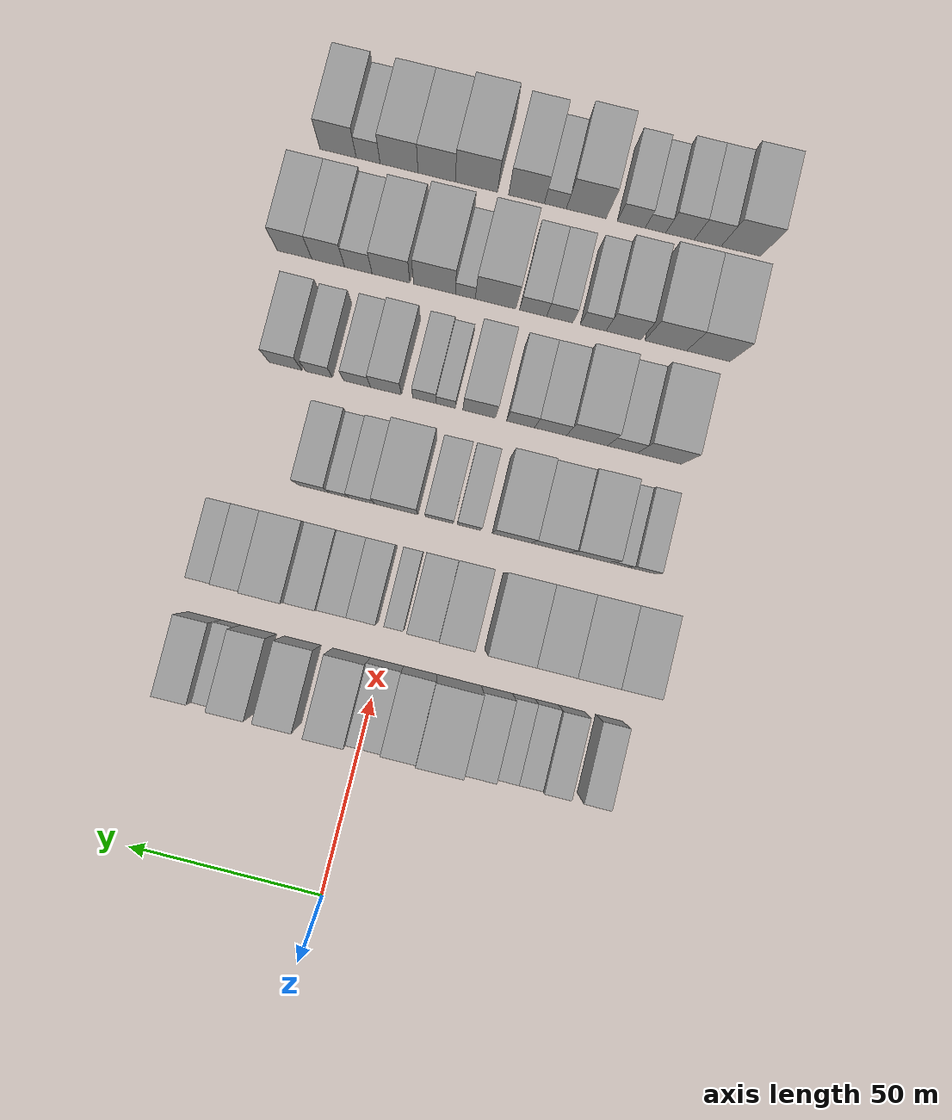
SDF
<sdf version="1.6">
 <world name="default">
  <model name="building_51">
   <static>1</static>
   <pose>50.0000 -59.1784 0 0.000000 0.000000 0.000000</pose>
   <link name="link">
    <pose>0 0 7.50 0 0 0</pose>
    <collision name="collision"><geometry><box><size>20.0000 6.8849 15.0000</size></box></geometry></collision>
    <visual name="visual">
     <cast_shadows>0</cast_shadows>
     <geometry><box><size>20.0000 6.8849 15.0000</size></box></geometry>
     <material>
      <script>
       <uri>model://grey_wall/materials/scripts</uri>
       <uri>model://grey_wall/materials/textures</uri>
       <name>vrc/grey_wall</name>
      </script>
     </material>
    </visual>
   </link>
  </model>
  <model name="building_52">
   <static>1</static>
   <pose>50.0000 -49.3642 0 0.000000 0.000000 0.000000</pose>
   <link name="link">
    <pose>0 0 7.50 0 0 0</pose>
    <collision name="collision"><geometry><box><size>20.0000 6.7436 15.0000</size></box></geometry></collision>
    <visual name="visual">
     <cast_shadows>0</cast_shadows>
     <geometry><box><size>20.0000 6.7436 15.0000</size></box></geometry>
     <material>
      <script>
       <uri>model://grey_wall/materials/scripts</uri>
       <uri>model://grey_wall/materials/textures</uri>
       <name>vrc/grey_wall</name>
      </script>
     </material>
    </visual>
   </link>
  </model>
  <model name="building_53">
   <static>1</static>
   <pose>50.0000 -43.0074 0 0.000000 0.000000 0.000000</pose>
   <link name="link">
    <pose>0 0 6.00 0 0 0</pose>
    <collision name="collision"><geometry><box><size>20.0000 5.9699 12.0000</size></box></geometry></collision>
    <visual name="visual">
     <cast_shadows>0</cast_shadows>
     <geometry><box><size>20.0000 5.9699 12.0000</size></box></geometry>
     <material>
      <script>
       <uri>model://grey_wall/materials/scripts</uri>
       <uri>model://grey_wall/materials/textures</uri>
       <name>vrc/grey_wall</name>
      </script>
     </material>
    </visual>
   </link>
  </model>
  <model name="building_54">
   <static>1</static>
   <pose>50.0000 -37.0977 0 0.000000 0.000000 0.000000</pose>
   <link name="link">
    <pose>0 0 6.00 0 0 0</pose>
    <collision name="collision"><geometry><box><size>20.0000 5.8495 12.0000</size></box></geometry></collision>
    <visual name="visual">
     <cast_shadows>0</cast_shadows>
     <geometry><box><size>20.0000 5.8495 12.0000</size></box></geometry>
     <material>
      <script>
       <uri>model://grey_wall/materials/scripts</uri>
       <uri>model://grey_wall/materials/textures</uri>
       <name>vrc/grey_wall</name>
      </script>
     </material>
    </visual>
   </link>
  </model>
  <model name="building_55">
   <static>1</static>
   <pose>50.0000 -30.1137 0 0.000000 0.000000 0.000000</pose>
   <link name="link">
    <pose>0 0 9.00 0 0 0</pose>
    <collision name="collision"><geometry><box><size>20.0000 8.1184 18.0000</size></box></geometry></collision>
    <visual name="visual">
     <cast_shadows>0</cast_shadows>
     <geometry><box><size>20.0000 8.1184 18.0000</size></box></geometry>
     <material>
      <script>
       <uri>model://grey_wall/materials/scripts</uri>
       <uri>model://grey_wall/materials/textures</uri>
       <name>vrc/grey_wall</name>
      </script>
     </material>
    </visual>
   </link>
  </model>
  <model name="building_56">
   <static>1</static>
   <pose>50.0000 -20.2414 0 0.000000 0.000000 0.000000</pose>
   <link name="link">
    <pose>0 0 12.00 0 0 0</pose>
    <collision name="collision"><geometry><box><size>20.0000 11.6262 24.0000</size></box></geometry></collision>
    <visual name="visual">
     <cast_shadows>0</cast_shadows>
     <geometry><box><size>20.0000 11.6262 24.0000</size></box></geometry>
     <material>
      <script>
       <uri>model://grey_wall/materials/scripts</uri>
       <uri>model://grey_wall/materials/textures</uri>
       <name>vrc/grey_wall</name>
      </script>
     </material>
    </visual>
   </link>
  </model>
  <model name="building_57">
   <static>1</static>
   <pose>50.0000 -10.1097 0 0.000000 0.000000 0.000000</pose>
   <link name="link">
    <pose>0 0 10.50 0 0 0</pose>
    <collision name="collision"><geometry><box><size>20.0000 8.6371 21.0000</size></box></geometry></collision>
    <visual name="visual">
     <cast_shadows>0</cast_shadows>
     <geometry><box><size>20.0000 8.6371 21.0000</size></box></geometry>
     <material>
      <script>
       <uri>model://grey_wall/materials/scripts</uri>
       <uri>model://grey_wall/materials/textures</uri>
       <name>vrc/grey_wall</name>
      </script>
     </material>
    </visual>
   </link>
  </model>
  <model name="building_58">
   <static>1</static>
   <pose>50.0000 -1.4658 0 0.000000 0.000000 0.000000</pose>
   <link name="link">
    <pose>0 0 9.00 0 0 0</pose>
    <collision name="collision"><geometry><box><size>20.0000 8.6507 18.0000</size></box></geometry></collision>
    <visual name="visual">
     <cast_shadows>0</cast_shadows>
     <geometry><box><size>20.0000 8.6507 18.0000</size></box></geometry>
     <material>
      <script>
       <uri>model://grey_wall/materials/scripts</uri>
       <uri>model://grey_wall/materials/textures</uri>
       <name>vrc/grey_wall</name>
      </script>
     </material>
    </visual>
   </link>
  </model>
  <model name="building_59">
   <static>1</static>
   <pose>50.0000 7.7913 0 0.000000 0.000000 0.000000</pose>
   <link name="link">
    <pose>0 0 12.00 0 0 0</pose>
    <collision name="collision"><geometry><box><size>20.0000 9.8635 24.0000</size></box></geometry></collision>
    <visual name="visual">
     <cast_shadows>0</cast_shadows>
     <geometry><box><size>20.0000 9.8635 24.0000</size></box></geometry>
     <material>
      <script>
       <uri>model://grey_wall/materials/scripts</uri>
       <uri>model://grey_wall/materials/textures</uri>
       <name>vrc/grey_wall</name>
      </script>
     </material>
    </visual>
   </link>
  </model>
  <model name="building_60">
   <static>1</static>
   <pose>50.0000 20.5481 0 0.000000 0.000000 0.000000</pose>
   <link name="link">
    <pose>0 0 10.50 0 0 0</pose>
    <collision name="collision"><geometry><box><size>20.0000 9.6502 21.0000</size></box></geometry></collision>
    <visual name="visual">
     <cast_shadows>0</cast_shadows>
     <geometry><box><size>20.0000 9.6502 21.0000</size></box></geometry>
     <material>
      <script>
       <uri>model://grey_wall/materials/scripts</uri>
       <uri>model://grey_wall/materials/textures</uri>
       <name>vrc/grey_wall</name>
      </script>
     </material>
    </visual>
   </link>
  </model>
  <model name="building_61">
   <static>1</static>
   <pose>50.0000 32.0184 0 0.000000 0.000000 0.000000</pose>
   <link name="link">
    <pose>0 0 10.50 0 0 0</pose>
    <collision name="collision"><geometry><box><size>20.0000 9.2904 21.0000</size></box></geometry></collision>
    <visual name="visual">
     <cast_shadows>0</cast_shadows>
     <geometry><box><size>20.0000 9.2904 21.0000</size></box></geometry>
     <material>
      <script>
       <uri>model://grey_wall/materials/scripts</uri>
       <uri>model://grey_wall/materials/textures</uri>
       <name>vrc/grey_wall</name>
      </script>
     </material>
    </visual>
   </link>
  </model>
  <model name="building_62">
   <static>1</static>
   <pose>50.0000 39.3033 0 0.000000 0.000000 0.000000</pose>
   <link name="link">
    <pose>0 0 6.00 0 0 0</pose>
    <collision name="collision"><geometry><box><size>20.0000 5.2794 12.0000</size></box></geometry></collision>
    <visual name="visual">
     <cast_shadows>0</cast_shadows>
     <geometry><box><size>20.0000 5.2794 12.0000</size></box></geometry>
     <material>
      <script>
       <uri>model://grey_wall/materials/scripts</uri>
       <uri>model://grey_wall/materials/textures</uri>
       <name>vrc/grey_wall</name>
      </script>
     </material>
    </visual>
   </link>
  </model>
  <model name="building_63">
   <static>1</static>
   <pose>50.0000 46.2925 0 0.000000 0.000000 0.000000</pose>
   <link name="link">
    <pose>0 0 9.00 0 0 0</pose>
    <collision name="collision"><geometry><box><size>20.0000 8.6988 18.0000</size></box></geometry></collision>
    <visual name="visual">
     <cast_shadows>0</cast_shadows>
     <geometry><box><size>20.0000 8.6988 18.0000</size></box></geometry>
     <material>
      <script>
       <uri>model://grey_wall/materials/scripts</uri>
       <uri>model://grey_wall/materials/textures</uri>
       <name>vrc/grey_wall</name>
      </script>
     </material>
    </visual>
   </link>
  </model>
  <model name="building_168">
   <static>1</static>
   <pose>79.0000 -61.6545 0 0.000000 0.000000 0.000000</pose>
   <link name="link">
    <pose>0 0 12.00 0 0 0</pose>
    <collision name="collision"><geometry><box><size>20.0000 9.9933 24.0000</size></box></geometry></collision>
    <visual name="visual">
     <cast_shadows>0</cast_shadows>
     <geometry><box><size>20.0000 9.9933 24.0000</size></box></geometry>
     <material>
      <script>
       <uri>model://grey_wall/materials/scripts</uri>
       <uri>model://grey_wall/materials/textures</uri>
       <name>vrc/grey_wall</name>
      </script>
     </material>
    </visual>
   </link>
  </model>
  <model name="building_169">
   <static>1</static>
   <pose>79.0000 -51.4443 0 0.000000 0.000000 0.000000</pose>
   <link name="link">
    <pose>0 0 12.00 0 0 0</pose>
    <collision name="collision"><geometry><box><size>20.0000 10.4271 24.0000</size></box></geometry></collision>
    <visual name="visual">
     <cast_shadows>0</cast_shadows>
     <geometry><box><size>20.0000 10.4271 24.0000</size></box></geometry>
     <material>
      <script>
       <uri>model://grey_wall/materials/scripts</uri>
       <uri>model://grey_wall/materials/textures</uri>
       <name>vrc/grey_wall</name>
      </script>
     </material>
    </visual>
   </link>
  </model>
  <model name="building_170">
   <static>1</static>
   <pose>79.0000 -41.3080 0 0.000000 0.000000 0.000000</pose>
   <link name="link">
    <pose>0 0 12.00 0 0 0</pose>
    <collision name="collision"><geometry><box><size>20.0000 9.8457 24.0000</size></box></geometry></collision>
    <visual name="visual">
     <cast_shadows>0</cast_shadows>
     <geometry><box><size>20.0000 9.8457 24.0000</size></box></geometry>
     <material>
      <script>
       <uri>model://grey_wall/materials/scripts</uri>
       <uri>model://grey_wall/materials/textures</uri>
       <name>vrc/grey_wall</name>
      </script>
     </material>
    </visual>
   </link>
  </model>
  <model name="building_171">
   <static>1</static>
   <pose>79.0000 -30.5276 0 0.000000 0.000000 0.000000</pose>
   <link name="link">
    <pose>0 0 12.00 0 0 0</pose>
    <collision name="collision"><geometry><box><size>20.0000 11.7151 24.0000</size></box></geometry></collision>
    <visual name="visual">
     <cast_shadows>0</cast_shadows>
     <geometry><box><size>20.0000 11.7151 24.0000</size></box></geometry>
     <material>
      <script>
       <uri>model://grey_wall/materials/scripts</uri>
       <uri>model://grey_wall/materials/textures</uri>
       <name>vrc/grey_wall</name>
      </script>
     </material>
    </visual>
   </link>
  </model>
  <model name="building_172">
   <static>1</static>
   <pose>79.0000 -17.2524 0 0.000000 0.000000 0.000000</pose>
   <link name="link">
    <pose>0 0 10.50 0 0 0</pose>
    <collision name="collision"><geometry><box><size>20.0000 8.8352 21.0000</size></box></geometry></collision>
    <visual name="visual">
     <cast_shadows>0</cast_shadows>
     <geometry><box><size>20.0000 8.8352 21.0000</size></box></geometry>
     <material>
      <script>
       <uri>model://grey_wall/materials/scripts</uri>
       <uri>model://grey_wall/materials/textures</uri>
       <name>vrc/grey_wall</name>
      </script>
     </material>
    </visual>
   </link>
  </model>
  <model name="building_173">
   <static>1</static>
   <pose>79.0000 -8.8095 0 0.000000 0.000000 0.000000</pose>
   <link name="link">
    <pose>0 0 9.00 0 0 0</pose>
    <collision name="collision"><geometry><box><size>20.0000 8.0505 18.0000</size></box></geometry></collision>
    <visual name="visual">
     <cast_shadows>0</cast_shadows>
     <geometry><box><size>20.0000 8.0505 18.0000</size></box></geometry>
     <material>
      <script>
       <uri>model://grey_wall/materials/scripts</uri>
       <uri>model://grey_wall/materials/textures</uri>
       <name>vrc/grey_wall</name>
      </script>
     </material>
    </visual>
   </link>
  </model>
  <model name="building_174">
   <static>1</static>
   <pose>79.0000 -1.3355 0 0.000000 0.000000 0.000000</pose>
   <link name="link">
    <pose>0 0 6.00 0 0 0</pose>
    <collision name="collision"><geometry><box><size>20.0000 4.8977 12.0000</size></box></geometry></collision>
    <visual name="visual">
     <cast_shadows>0</cast_shadows>
     <geometry><box><size>20.0000 4.8977 12.0000</size></box></geometry>
     <material>
      <script>
       <uri>model://grey_wall/materials/scripts</uri>
       <uri>model://grey_wall/materials/textures</uri>
       <name>vrc/grey_wall</name>
      </script>
     </material>
    </visual>
   </link>
  </model>
  <model name="building_175">
   <static>1</static>
   <pose>79.0000 6.7716 0 0.000000 0.000000 0.000000</pose>
   <link name="link">
    <pose>0 0 7.50 0 0 0</pose>
    <collision name="collision"><geometry><box><size>20.0000 7.3166 15.0000</size></box></geometry></collision>
    <visual name="visual">
     <cast_shadows>0</cast_shadows>
     <geometry><box><size>20.0000 7.3166 15.0000</size></box></geometry>
     <material>
      <script>
       <uri>model://grey_wall/materials/scripts</uri>
       <uri>model://grey_wall/materials/textures</uri>
       <name>vrc/grey_wall</name>
      </script>
     </material>
    </visual>
   </link>
  </model>
  <model name="building_176">
   <static>1</static>
   <pose>79.0000 14.1439 0 0.000000 0.000000 0.000000</pose>
   <link name="link">
    <pose>0 0 7.50 0 0 0</pose>
    <collision name="collision"><geometry><box><size>20.0000 7.4280 15.0000</size></box></geometry></collision>
    <visual name="visual">
     <cast_shadows>0</cast_shadows>
     <geometry><box><size>20.0000 7.4280 15.0000</size></box></geometry>
     <material>
      <script>
       <uri>model://grey_wall/materials/scripts</uri>
       <uri>model://grey_wall/materials/textures</uri>
       <name>vrc/grey_wall</name>
      </script>
     </material>
    </visual>
   </link>
  </model>
  <model name="building_177">
   <static>1</static>
   <pose>79.0000 21.7420 0 0.000000 0.000000 0.000000</pose>
   <link name="link">
    <pose>0 0 9.00 0 0 0</pose>
    <collision name="collision"><geometry><box><size>20.0000 7.7682 18.0000</size></box></geometry></collision>
    <visual name="visual">
     <cast_shadows>0</cast_shadows>
     <geometry><box><size>20.0000 7.7682 18.0000</size></box></geometry>
     <material>
      <script>
       <uri>model://grey_wall/materials/scripts</uri>
       <uri>model://grey_wall/materials/textures</uri>
       <name>vrc/grey_wall</name>
      </script>
     </material>
    </visual>
   </link>
  </model>
  <model name="building_178">
   <static>1</static>
   <pose>79.0000 30.7493 0 0.000000 0.000000 0.000000</pose>
   <link name="link">
    <pose>0 0 12.00 0 0 0</pose>
    <collision name="collision"><geometry><box><size>20.0000 10.2464 24.0000</size></box></geometry></collision>
    <visual name="visual">
     <cast_shadows>0</cast_shadows>
     <geometry><box><size>20.0000 10.2464 24.0000</size></box></geometry>
     <material>
      <script>
       <uri>model://grey_wall/materials/scripts</uri>
       <uri>model://grey_wall/materials/textures</uri>
       <name>vrc/grey_wall</name>
      </script>
     </material>
    </visual>
   </link>
  </model>
  <model name="building_179">
   <static>1</static>
   <pose>79.0000 39.9305 0 0.000000 0.000000 0.000000</pose>
   <link name="link">
    <pose>0 0 9.00 0 0 0</pose>
    <collision name="collision"><geometry><box><size>20.0000 8.1161 18.0000</size></box></geometry></collision>
    <visual name="visual">
     <cast_shadows>0</cast_shadows>
     <geometry><box><size>20.0000 8.1161 18.0000</size></box></geometry>
     <material>
      <script>
       <uri>model://grey_wall/materials/scripts</uri>
       <uri>model://grey_wall/materials/textures</uri>
       <name>vrc/grey_wall</name>
      </script>
     </material>
    </visual>
   </link>
  </model>
  <model name="building_180">
   <static>1</static>
   <pose>79.0000 47.3408 0 0.000000 0.000000 0.000000</pose>
   <link name="link">
    <pose>0 0 7.50 0 0 0</pose>
    <collision name="collision"><geometry><box><size>20.0000 6.7044 15.0000</size></box></geometry></collision>
    <visual name="visual">
     <cast_shadows>0</cast_shadows>
     <geometry><box><size>20.0000 6.7044 15.0000</size></box></geometry>
     <material>
      <script>
       <uri>model://grey_wall/materials/scripts</uri>
       <uri>model://grey_wall/materials/textures</uri>
       <name>vrc/grey_wall</name>
      </script>
     </material>
    </visual>
   </link>
  </model>
  <model name="building_282">
   <static>1</static>
   <pose>108.0000 -58.4240 0 0.000000 0.000000 0.000000</pose>
   <link name="link">
    <pose>0 0 7.50 0 0 0</pose>
    <collision name="collision"><geometry><box><size>20.0000 6.3321 15.0000</size></box></geometry></collision>
    <visual name="visual">
     <cast_shadows>0</cast_shadows>
     <geometry><box><size>20.0000 6.3321 15.0000</size></box></geometry>
     <material>
      <script>
       <uri>model://grey_wall/materials/scripts</uri>
       <uri>model://grey_wall/materials/textures</uri>
       <name>vrc/grey_wall</name>
      </script>
     </material>
    </visual>
   </link>
  </model>
  <model name="building_283">
   <static>1</static>
   <pose>108.0000 -52.6528 0 0.000000 0.000000 0.000000</pose>
   <link name="link">
    <pose>0 0 6.00 0 0 0</pose>
    <collision name="collision"><geometry><box><size>20.0000 5.2102 12.0000</size></box></geometry></collision>
    <visual name="visual">
     <cast_shadows>0</cast_shadows>
     <geometry><box><size>20.0000 5.2102 12.0000</size></box></geometry>
     <material>
      <script>
       <uri>model://grey_wall/materials/scripts</uri>
       <uri>model://grey_wall/materials/textures</uri>
       <name>vrc/grey_wall</name>
      </script>
     </material>
    </visual>
   </link>
  </model>
  <model name="building_284">
   <static>1</static>
   <pose>108.0000 -44.8883 0 0.000000 0.000000 0.000000</pose>
   <link name="link">
    <pose>0 0 12.00 0 0 0</pose>
    <collision name="collision"><geometry><box><size>20.0000 10.3189 24.0000</size></box></geometry></collision>
    <visual name="visual">
     <cast_shadows>0</cast_shadows>
     <geometry><box><size>20.0000 10.3189 24.0000</size></box></geometry>
     <material>
      <script>
       <uri>model://grey_wall/materials/scripts</uri>
       <uri>model://grey_wall/materials/textures</uri>
       <name>vrc/grey_wall</name>
      </script>
     </material>
    </visual>
   </link>
  </model>
  <model name="building_285">
   <static>1</static>
   <pose>108.0000 -34.7477 0 0.000000 0.000000 0.000000</pose>
   <link name="link">
    <pose>0 0 10.50 0 0 0</pose>
    <collision name="collision"><geometry><box><size>20.0000 9.9623 21.0000</size></box></geometry></collision>
    <visual name="visual">
     <cast_shadows>0</cast_shadows>
     <geometry><box><size>20.0000 9.9623 21.0000</size></box></geometry>
     <material>
      <script>
       <uri>model://grey_wall/materials/scripts</uri>
       <uri>model://grey_wall/materials/textures</uri>
       <name>vrc/grey_wall</name>
      </script>
     </material>
    </visual>
   </link>
  </model>
  <model name="building_286">
   <static>1</static>
   <pose>108.0000 -24.6324 0 0.000000 0.000000 0.000000</pose>
   <link name="link">
    <pose>0 0 12.00 0 0 0</pose>
    <collision name="collision"><geometry><box><size>20.0000 10.2683 24.0000</size></box></geometry></collision>
    <visual name="visual">
     <cast_shadows>0</cast_shadows>
     <geometry><box><size>20.0000 10.2683 24.0000</size></box></geometry>
     <material>
      <script>
       <uri>model://grey_wall/materials/scripts</uri>
       <uri>model://grey_wall/materials/textures</uri>
       <name>vrc/grey_wall</name>
      </script>
     </material>
    </visual>
   </link>
  </model>
  <model name="building_287">
   <static>1</static>
   <pose>108.0000 -13.4036 0 0.000000 0.000000 0.000000</pose>
   <link name="link">
    <pose>0 0 7.50 0 0 0</pose>
    <collision name="collision"><geometry><box><size>20.0000 6.1892 15.0000</size></box></geometry></collision>
    <visual name="visual">
     <cast_shadows>0</cast_shadows>
     <geometry><box><size>20.0000 6.1892 15.0000</size></box></geometry>
     <material>
      <script>
       <uri>model://grey_wall/materials/scripts</uri>
       <uri>model://grey_wall/materials/textures</uri>
       <name>vrc/grey_wall</name>
      </script>
     </material>
    </visual>
   </link>
  </model>
  <model name="building_288">
   <static>1</static>
   <pose>108.0000 -5.6648 0 0.000000 0.000000 0.000000</pose>
   <link name="link">
    <pose>0 0 7.50 0 0 0</pose>
    <collision name="collision"><geometry><box><size>20.0000 7.2884 15.0000</size></box></geometry></collision>
    <visual name="visual">
     <cast_shadows>0</cast_shadows>
     <geometry><box><size>20.0000 7.2884 15.0000</size></box></geometry>
     <material>
      <script>
       <uri>model://grey_wall/materials/scripts</uri>
       <uri>model://grey_wall/materials/textures</uri>
       <name>vrc/grey_wall</name>
      </script>
     </material>
    </visual>
   </link>
  </model>
  <model name="building_289">
   <static>1</static>
   <pose>108.0000 5.5718 0 0.000000 0.000000 0.000000</pose>
   <link name="link">
    <pose>0 0 12.00 0 0 0</pose>
    <collision name="collision"><geometry><box><size>20.0000 11.1848 24.0000</size></box></geometry></collision>
    <visual name="visual">
     <cast_shadows>0</cast_shadows>
     <geometry><box><size>20.0000 11.1848 24.0000</size></box></geometry>
     <material>
      <script>
       <uri>model://grey_wall/materials/scripts</uri>
       <uri>model://grey_wall/materials/textures</uri>
       <name>vrc/grey_wall</name>
      </script>
     </material>
    </visual>
   </link>
  </model>
  <model name="building_290">
   <static>1</static>
   <pose>108.0000 14.6629 0 0.000000 0.000000 0.000000</pose>
   <link name="link">
    <pose>0 0 7.50 0 0 0</pose>
    <collision name="collision"><geometry><box><size>20.0000 6.9974 15.0000</size></box></geometry></collision>
    <visual name="visual">
     <cast_shadows>0</cast_shadows>
     <geometry><box><size>20.0000 6.9974 15.0000</size></box></geometry>
     <material>
      <script>
       <uri>model://grey_wall/materials/scripts</uri>
       <uri>model://grey_wall/materials/textures</uri>
       <name>vrc/grey_wall</name>
      </script>
     </material>
    </visual>
   </link>
  </model>
  <model name="building_291">
   <static>1</static>
   <pose>108.0000 20.7461 0 0.000000 0.000000 0.000000</pose>
   <link name="link">
    <pose>0 0 6.00 0 0 0</pose>
    <collision name="collision"><geometry><box><size>20.0000 5.1690 12.0000</size></box></geometry></collision>
    <visual name="visual">
     <cast_shadows>0</cast_shadows>
     <geometry><box><size>20.0000 5.1690 12.0000</size></box></geometry>
     <material>
      <script>
       <uri>model://grey_wall/materials/scripts</uri>
       <uri>model://grey_wall/materials/textures</uri>
       <name>vrc/grey_wall</name>
      </script>
     </material>
    </visual>
   </link>
  </model>
  <model name="building_292">
   <static>1</static>
   <pose>108.0000 27.3857 0 0.000000 0.000000 0.000000</pose>
   <link name="link">
    <pose>0 0 9.00 0 0 0</pose>
    <collision name="collision"><geometry><box><size>20.0000 8.1102 18.0000</size></box></geometry></collision>
    <visual name="visual">
     <cast_shadows>0</cast_shadows>
     <geometry><box><size>20.0000 8.1102 18.0000</size></box></geometry>
     <material>
      <script>
       <uri>model://grey_wall/materials/scripts</uri>
       <uri>model://grey_wall/materials/textures</uri>
       <name>vrc/grey_wall</name>
      </script>
     </material>
    </visual>
   </link>
  </model>
  <model name="building_390">
   <static>1</static>
   <pose>137.0000 -56.6319 0 0.000000 0.000000 0.000000</pose>
   <link name="link">
    <pose>0 0 12.00 0 0 0</pose>
    <collision name="collision"><geometry><box><size>20.0000 11.6545 24.0000</size></box></geometry></collision>
    <visual name="visual">
     <cast_shadows>0</cast_shadows>
     <geometry><box><size>20.0000 11.6545 24.0000</size></box></geometry>
     <material>
      <script>
       <uri>model://grey_wall/materials/scripts</uri>
       <uri>model://grey_wall/materials/textures</uri>
       <name>vrc/grey_wall</name>
      </script>
     </material>
    </visual>
   </link>
  </model>
  <model name="building_391">
   <static>1</static>
   <pose>137.0000 -46.8987 0 0.000000 0.000000 0.000000</pose>
   <link name="link">
    <pose>0 0 9.00 0 0 0</pose>
    <collision name="collision"><geometry><box><size>20.0000 7.8121 18.0000</size></box></geometry></collision>
    <visual name="visual">
     <cast_shadows>0</cast_shadows>
     <geometry><box><size>20.0000 7.8121 18.0000</size></box></geometry>
     <material>
      <script>
       <uri>model://grey_wall/materials/scripts</uri>
       <uri>model://grey_wall/materials/textures</uri>
       <name>vrc/grey_wall</name>
      </script>
     </material>
    </visual>
   </link>
  </model>
  <model name="building_392">
   <static>1</static>
   <pose>137.0000 -37.5493 0 0.000000 0.000000 0.000000</pose>
   <link name="link">
    <pose>0 0 12.00 0 0 0</pose>
    <collision name="collision"><geometry><box><size>20.0000 10.8866 24.0000</size></box></geometry></collision>
    <visual name="visual">
     <cast_shadows>0</cast_shadows>
     <geometry><box><size>20.0000 10.8866 24.0000</size></box></geometry>
     <material>
      <script>
       <uri>model://grey_wall/materials/scripts</uri>
       <uri>model://grey_wall/materials/textures</uri>
       <name>vrc/grey_wall</name>
      </script>
     </material>
    </visual>
   </link>
  </model>
  <model name="building_393">
   <static>1</static>
   <pose>137.0000 -27.8930 0 0.000000 0.000000 0.000000</pose>
   <link name="link">
    <pose>0 0 9.00 0 0 0</pose>
    <collision name="collision"><geometry><box><size>20.0000 8.4260 18.0000</size></box></geometry></collision>
    <visual name="visual">
     <cast_shadows>0</cast_shadows>
     <geometry><box><size>20.0000 8.4260 18.0000</size></box></geometry>
     <material>
      <script>
       <uri>model://grey_wall/materials/scripts</uri>
       <uri>model://grey_wall/materials/textures</uri>
       <name>vrc/grey_wall</name>
      </script>
     </material>
    </visual>
   </link>
  </model>
  <model name="building_394">
   <static>1</static>
   <pose>137.0000 -19.9711 0 0.000000 0.000000 0.000000</pose>
   <link name="link">
    <pose>0 0 9.00 0 0 0</pose>
    <collision name="collision"><geometry><box><size>20.0000 7.4180 18.0000</size></box></geometry></collision>
    <visual name="visual">
     <cast_shadows>0</cast_shadows>
     <geometry><box><size>20.0000 7.4180 18.0000</size></box></geometry>
     <material>
      <script>
       <uri>model://grey_wall/materials/scripts</uri>
       <uri>model://grey_wall/materials/textures</uri>
       <name>vrc/grey_wall</name>
      </script>
     </material>
    </visual>
   </link>
  </model>
  <model name="building_395">
   <static>1</static>
   <pose>137.0000 -8.9519 0 0.000000 0.000000 0.000000</pose>
   <link name="link">
    <pose>0 0 10.50 0 0 0</pose>
    <collision name="collision"><geometry><box><size>20.0000 8.6204 21.0000</size></box></geometry></collision>
    <visual name="visual">
     <cast_shadows>0</cast_shadows>
     <geometry><box><size>20.0000 8.6204 21.0000</size></box></geometry>
     <material>
      <script>
       <uri>model://grey_wall/materials/scripts</uri>
       <uri>model://grey_wall/materials/textures</uri>
       <name>vrc/grey_wall</name>
      </script>
     </material>
    </visual>
   </link>
  </model>
  <model name="building_396">
   <static>1</static>
   <pose>137.0000 -0.0983 0 0.000000 0.000000 0.000000</pose>
   <link name="link">
    <pose>0 0 6.00 0 0 0</pose>
    <collision name="collision"><geometry><box><size>20.0000 5.0868 12.0000</size></box></geometry></collision>
    <visual name="visual">
     <cast_shadows>0</cast_shadows>
     <geometry><box><size>20.0000 5.0868 12.0000</size></box></geometry>
     <material>
      <script>
       <uri>model://grey_wall/materials/scripts</uri>
       <uri>model://grey_wall/materials/textures</uri>
       <name>vrc/grey_wall</name>
      </script>
     </material>
    </visual>
   </link>
  </model>
  <model name="building_397">
   <static>1</static>
   <pose>137.0000 5.5508 0 0.000000 0.000000 0.000000</pose>
   <link name="link">
    <pose>0 0 7.50 0 0 0</pose>
    <collision name="collision"><geometry><box><size>20.0000 6.2115 15.0000</size></box></geometry></collision>
    <visual name="visual">
     <cast_shadows>0</cast_shadows>
     <geometry><box><size>20.0000 6.2115 15.0000</size></box></geometry>
     <material>
      <script>
       <uri>model://grey_wall/materials/scripts</uri>
       <uri>model://grey_wall/materials/textures</uri>
       <name>vrc/grey_wall</name>
      </script>
     </material>
    </visual>
   </link>
  </model>
  <model name="building_398">
   <static>1</static>
   <pose>137.0000 15.7841 0 0.000000 0.000000 0.000000</pose>
   <link name="link">
    <pose>0 0 9.00 0 0 0</pose>
    <collision name="collision"><geometry><box><size>20.0000 8.2549 18.0000</size></box></geometry></collision>
    <visual name="visual">
     <cast_shadows>0</cast_shadows>
     <geometry><box><size>20.0000 8.2549 18.0000</size></box></geometry>
     <material>
      <script>
       <uri>model://grey_wall/materials/scripts</uri>
       <uri>model://grey_wall/materials/textures</uri>
       <name>vrc/grey_wall</name>
      </script>
     </material>
    </visual>
   </link>
  </model>
  <model name="building_399">
   <static>1</static>
   <pose>137.0000 23.4554 0 0.000000 0.000000 0.000000</pose>
   <link name="link">
    <pose>0 0 7.50 0 0 0</pose>
    <collision name="collision"><geometry><box><size>20.0000 7.0878 15.0000</size></box></geometry></collision>
    <visual name="visual">
     <cast_shadows>0</cast_shadows>
     <geometry><box><size>20.0000 7.0878 15.0000</size></box></geometry>
     <material>
      <script>
       <uri>model://grey_wall/materials/scripts</uri>
       <uri>model://grey_wall/materials/textures</uri>
       <name>vrc/grey_wall</name>
      </script>
     </material>
    </visual>
   </link>
  </model>
  <model name="building_400">
   <static>1</static>
   <pose>137.0000 33.5954 0 0.000000 0.000000 0.000000</pose>
   <link name="link">
    <pose>0 0 7.50 0 0 0</pose>
    <collision name="collision"><geometry><box><size>20.0000 7.1922 15.0000</size></box></geometry></collision>
    <visual name="visual">
     <cast_shadows>0</cast_shadows>
     <geometry><box><size>20.0000 7.1922 15.0000</size></box></geometry>
     <material>
      <script>
       <uri>model://grey_wall/materials/scripts</uri>
       <uri>model://grey_wall/materials/textures</uri>
       <name>vrc/grey_wall</name>
      </script>
     </material>
    </visual>
   </link>
  </model>
  <model name="building_401">
   <static>1</static>
   <pose>137.0000 42.5350 0 0.000000 0.000000 0.000000</pose>
   <link name="link">
    <pose>0 0 9.00 0 0 0</pose>
    <collision name="collision"><geometry><box><size>20.0000 8.6869 18.0000</size></box></geometry></collision>
    <visual name="visual">
     <cast_shadows>0</cast_shadows>
     <geometry><box><size>20.0000 8.6869 18.0000</size></box></geometry>
     <material>
      <script>
       <uri>model://grey_wall/materials/scripts</uri>
       <uri>model://grey_wall/materials/textures</uri>
       <name>vrc/grey_wall</name>
      </script>
     </material>
    </visual>
   </link>
  </model>
  <model name="building_500">
   <static>1</static>
   <pose>166.0000 -62.9286 0 0.000000 0.000000 0.000000</pose>
   <link name="link">
    <pose>0 0 12.00 0 0 0</pose>
    <collision name="collision"><geometry><box><size>20.0000 11.6013 24.0000</size></box></geometry></collision>
    <visual name="visual">
     <cast_shadows>0</cast_shadows>
     <geometry><box><size>20.0000 11.6013 24.0000</size></box></geometry>
     <material>
      <script>
       <uri>model://grey_wall/materials/scripts</uri>
       <uri>model://grey_wall/materials/textures</uri>
       <name>vrc/grey_wall</name>
      </script>
     </material>
    </visual>
   </link>
  </model>
  <model name="building_501">
   <static>1</static>
   <pose>166.0000 -51.5701 0 0.000000 0.000000 0.000000</pose>
   <link name="link">
    <pose>0 0 12.00 0 0 0</pose>
    <collision name="collision"><geometry><box><size>20.0000 11.1156 24.0000</size></box></geometry></collision>
    <visual name="visual">
     <cast_shadows>0</cast_shadows>
     <geometry><box><size>20.0000 11.1156 24.0000</size></box></geometry>
     <material>
      <script>
       <uri>model://grey_wall/materials/scripts</uri>
       <uri>model://grey_wall/materials/textures</uri>
       <name>vrc/grey_wall</name>
      </script>
     </material>
    </visual>
   </link>
  </model>
  <model name="building_502">
   <static>1</static>
   <pose>166.0000 -40.3298 0 0.000000 0.000000 0.000000</pose>
   <link name="link">
    <pose>0 0 10.50 0 0 0</pose>
    <collision name="collision"><geometry><box><size>20.0000 9.3651 21.0000</size></box></geometry></collision>
    <visual name="visual">
     <cast_shadows>0</cast_shadows>
     <geometry><box><size>20.0000 9.3651 21.0000</size></box></geometry>
     <material>
      <script>
       <uri>model://grey_wall/materials/scripts</uri>
       <uri>model://grey_wall/materials/textures</uri>
       <name>vrc/grey_wall</name>
      </script>
     </material>
    </visual>
   </link>
  </model>
  <model name="building_503">
   <static>1</static>
   <pose>166.0000 -32.2203 0 0.000000 0.000000 0.000000</pose>
   <link name="link">
    <pose>0 0 7.50 0 0 0</pose>
    <collision name="collision"><geometry><box><size>20.0000 6.8538 15.0000</size></box></geometry></collision>
    <visual name="visual">
     <cast_shadows>0</cast_shadows>
     <geometry><box><size>20.0000 6.8538 15.0000</size></box></geometry>
     <material>
      <script>
       <uri>model://grey_wall/materials/scripts</uri>
       <uri>model://grey_wall/materials/textures</uri>
       <name>vrc/grey_wall</name>
      </script>
     </material>
    </visual>
   </link>
  </model>
  <model name="building_504">
   <static>1</static>
   <pose>166.0000 -23.3033 0 0.000000 0.000000 0.000000</pose>
   <link name="link">
    <pose>0 0 7.50 0 0 0</pose>
    <collision name="collision"><geometry><box><size>20.0000 6.9802 15.0000</size></box></geometry></collision>
    <visual name="visual">
     <cast_shadows>0</cast_shadows>
     <geometry><box><size>20.0000 6.9802 15.0000</size></box></geometry>
     <material>
      <script>
       <uri>model://grey_wall/materials/scripts</uri>
       <uri>model://grey_wall/materials/textures</uri>
       <name>vrc/grey_wall</name>
      </script>
     </material>
    </visual>
   </link>
  </model>
  <model name="building_505">
   <static>1</static>
   <pose>166.0000 -16.2168 0 0.000000 0.000000 0.000000</pose>
   <link name="link">
    <pose>0 0 7.50 0 0 0</pose>
    <collision name="collision"><geometry><box><size>20.0000 7.1928 15.0000</size></box></geometry></collision>
    <visual name="visual">
     <cast_shadows>0</cast_shadows>
     <geometry><box><size>20.0000 7.1928 15.0000</size></box></geometry>
     <material>
      <script>
       <uri>model://grey_wall/materials/scripts</uri>
       <uri>model://grey_wall/materials/textures</uri>
       <name>vrc/grey_wall</name>
      </script>
     </material>
    </visual>
   </link>
  </model>
  <model name="building_506">
   <static>1</static>
   <pose>166.0000 -6.1907 0 0.000000 0.000000 0.000000</pose>
   <link name="link">
    <pose>0 0 12.00 0 0 0</pose>
    <collision name="collision"><geometry><box><size>20.0000 10.8594 24.0000</size></box></geometry></collision>
    <visual name="visual">
     <cast_shadows>0</cast_shadows>
     <geometry><box><size>20.0000 10.8594 24.0000</size></box></geometry>
     <material>
      <script>
       <uri>model://grey_wall/materials/scripts</uri>
       <uri>model://grey_wall/materials/textures</uri>
       <name>vrc/grey_wall</name>
      </script>
     </material>
    </visual>
   </link>
  </model>
  <model name="building_507">
   <static>1</static>
   <pose>166.0000 1.9009 0 0.000000 0.000000 0.000000</pose>
   <link name="link">
    <pose>0 0 6.00 0 0 0</pose>
    <collision name="collision"><geometry><box><size>20.0000 5.3240 12.0000</size></box></geometry></collision>
    <visual name="visual">
     <cast_shadows>0</cast_shadows>
     <geometry><box><size>20.0000 5.3240 12.0000</size></box></geometry>
     <material>
      <script>
       <uri>model://grey_wall/materials/scripts</uri>
       <uri>model://grey_wall/materials/textures</uri>
       <name>vrc/grey_wall</name>
      </script>
     </material>
    </visual>
   </link>
  </model>
  <model name="building_508">
   <static>1</static>
   <pose>166.0000 10.1318 0 0.000000 0.000000 0.000000</pose>
   <link name="link">
    <pose>0 0 12.00 0 0 0</pose>
    <collision name="collision"><geometry><box><size>20.0000 11.1378 24.0000</size></box></geometry></collision>
    <visual name="visual">
     <cast_shadows>0</cast_shadows>
     <geometry><box><size>20.0000 11.1378 24.0000</size></box></geometry>
     <material>
      <script>
       <uri>model://grey_wall/materials/scripts</uri>
       <uri>model://grey_wall/materials/textures</uri>
       <name>vrc/grey_wall</name>
      </script>
     </material>
    </visual>
   </link>
  </model>
  <model name="building_509">
   <static>1</static>
   <pose>166.0000 21.7806 0 0.000000 0.000000 0.000000</pose>
   <link name="link">
    <pose>0 0 10.50 0 0 0</pose>
    <collision name="collision"><geometry><box><size>20.0000 10.1598 21.0000</size></box></geometry></collision>
    <visual name="visual">
     <cast_shadows>0</cast_shadows>
     <geometry><box><size>20.0000 10.1598 21.0000</size></box></geometry>
     <material>
      <script>
       <uri>model://grey_wall/materials/scripts</uri>
       <uri>model://grey_wall/materials/textures</uri>
       <name>vrc/grey_wall</name>
      </script>
     </material>
    </visual>
   </link>
  </model>
  <model name="building_510">
   <static>1</static>
   <pose>166.0000 30.5357 0 0.000000 0.000000 0.000000</pose>
   <link name="link">
    <pose>0 0 9.00 0 0 0</pose>
    <collision name="collision"><geometry><box><size>20.0000 7.3504 18.0000</size></box></geometry></collision>
    <visual name="visual">
     <cast_shadows>0</cast_shadows>
     <geometry><box><size>20.0000 7.3504 18.0000</size></box></geometry>
     <material>
      <script>
       <uri>model://grey_wall/materials/scripts</uri>
       <uri>model://grey_wall/materials/textures</uri>
       <name>vrc/grey_wall</name>
      </script>
     </material>
    </visual>
   </link>
  </model>
  <model name="building_511">
   <static>1</static>
   <pose>166.0000 38.6359 0 0.000000 0.000000 0.000000</pose>
   <link name="link">
    <pose>0 0 10.50 0 0 0</pose>
    <collision name="collision"><geometry><box><size>20.0000 8.8500 21.0000</size></box></geometry></collision>
    <visual name="visual">
     <cast_shadows>0</cast_shadows>
     <geometry><box><size>20.0000 8.8500 21.0000</size></box></geometry>
     <material>
      <script>
       <uri>model://grey_wall/materials/scripts</uri>
       <uri>model://grey_wall/materials/textures</uri>
       <name>vrc/grey_wall</name>
      </script>
     </material>
    </visual>
   </link>
  </model>
  <model name="building_512">
   <static>1</static>
   <pose>166.0000 47.7215 0 0.000000 0.000000 0.000000</pose>
   <link name="link">
    <pose>0 0 10.50 0 0 0</pose>
    <collision name="collision"><geometry><box><size>20.0000 9.3214 21.0000</size></box></geometry></collision>
    <visual name="visual">
     <cast_shadows>0</cast_shadows>
     <geometry><box><size>20.0000 9.3214 21.0000</size></box></geometry>
     <material>
      <script>
       <uri>model://grey_wall/materials/scripts</uri>
       <uri>model://grey_wall/materials/textures</uri>
       <name>vrc/grey_wall</name>
      </script>
     </material>
    </visual>
   </link>
  </model>
  <model name="building_616">
   <static>1</static>
   <pose>195.0000 -64.9841 0 0.000000 0.000000 0.000000</pose>
   <link name="link">
    <pose>0 0 12.00 0 0 0</pose>
    <collision name="collision"><geometry><box><size>20.0000 10.6557 24.0000</size></box></geometry></collision>
    <visual name="visual">
     <cast_shadows>0</cast_shadows>
     <geometry><box><size>20.0000 10.6557 24.0000</size></box></geometry>
     <material>
      <script>
       <uri>model://grey_wall/materials/scripts</uri>
       <uri>model://grey_wall/materials/textures</uri>
       <name>vrc/grey_wall</name>
      </script>
     </material>
    </visual>
   </link>
  </model>
  <model name="building_617">
   <static>1</static>
   <pose>195.0000 -56.0411 0 0.000000 0.000000 0.000000</pose>
   <link name="link">
    <pose>0 0 9.00 0 0 0</pose>
    <collision name="collision"><geometry><box><size>20.0000 7.2301 18.0000</size></box></geometry></collision>
    <visual name="visual">
     <cast_shadows>0</cast_shadows>
     <geometry><box><size>20.0000 7.2301 18.0000</size></box></geometry>
     <material>
      <script>
       <uri>model://grey_wall/materials/scripts</uri>
       <uri>model://grey_wall/materials/textures</uri>
       <name>vrc/grey_wall</name>
      </script>
     </material>
    </visual>
   </link>
  </model>
  <model name="building_618">
   <static>1</static>
   <pose>195.0000 -48.6028 0 0.000000 0.000000 0.000000</pose>
   <link name="link">
    <pose>0 0 9.00 0 0 0</pose>
    <collision name="collision"><geometry><box><size>20.0000 7.6466 18.0000</size></box></geometry></collision>
    <visual name="visual">
     <cast_shadows>0</cast_shadows>
     <geometry><box><size>20.0000 7.6466 18.0000</size></box></geometry>
     <material>
      <script>
       <uri>model://grey_wall/materials/scripts</uri>
       <uri>model://grey_wall/materials/textures</uri>
       <name>vrc/grey_wall</name>
      </script>
     </material>
    </visual>
   </link>
  </model>
  <model name="building_619">
   <static>1</static>
   <pose>195.0000 -42.0372 0 0.000000 0.000000 0.000000</pose>
   <link name="link">
    <pose>0 0 6.00 0 0 0</pose>
    <collision name="collision"><geometry><box><size>20.0000 5.4845 12.0000</size></box></geometry></collision>
    <visual name="visual">
     <cast_shadows>0</cast_shadows>
     <geometry><box><size>20.0000 5.4845 12.0000</size></box></geometry>
     <material>
      <script>
       <uri>model://grey_wall/materials/scripts</uri>
       <uri>model://grey_wall/materials/textures</uri>
       <name>vrc/grey_wall</name>
      </script>
     </material>
    </visual>
   </link>
  </model>
  <model name="building_620">
   <static>1</static>
   <pose>195.0000 -35.5574 0 0.000000 0.000000 0.000000</pose>
   <link name="link">
    <pose>0 0 7.50 0 0 0</pose>
    <collision name="collision"><geometry><box><size>20.0000 7.4751 15.0000</size></box></geometry></collision>
    <visual name="visual">
     <cast_shadows>0</cast_shadows>
     <geometry><box><size>20.0000 7.4751 15.0000</size></box></geometry>
     <material>
      <script>
       <uri>model://grey_wall/materials/scripts</uri>
       <uri>model://grey_wall/materials/textures</uri>
       <name>vrc/grey_wall</name>
      </script>
     </material>
    </visual>
   </link>
  </model>
  <model name="building_621">
   <static>1</static>
   <pose>195.0000 -23.4874 0 0.000000 0.000000 0.000000</pose>
   <link name="link">
    <pose>0 0 12.00 0 0 0</pose>
    <collision name="collision"><geometry><box><size>20.0000 10.6648 24.0000</size></box></geometry></collision>
    <visual name="visual">
     <cast_shadows>0</cast_shadows>
     <geometry><box><size>20.0000 10.6648 24.0000</size></box></geometry>
     <material>
      <script>
       <uri>model://grey_wall/materials/scripts</uri>
       <uri>model://grey_wall/materials/textures</uri>
       <name>vrc/grey_wall</name>
      </script>
     </material>
    </visual>
   </link>
  </model>
  <model name="building_622">
   <static>1</static>
   <pose>195.0000 -15.1941 0 0.000000 0.000000 0.000000</pose>
   <link name="link">
    <pose>0 0 6.00 0 0 0</pose>
    <collision name="collision"><geometry><box><size>20.0000 5.9218 12.0000</size></box></geometry></collision>
    <visual name="visual">
     <cast_shadows>0</cast_shadows>
     <geometry><box><size>20.0000 5.9218 12.0000</size></box></geometry>
     <material>
      <script>
       <uri>model://grey_wall/materials/scripts</uri>
       <uri>model://grey_wall/materials/textures</uri>
       <name>vrc/grey_wall</name>
      </script>
     </material>
    </visual>
   </link>
  </model>
  <model name="building_623">
   <static>1</static>
   <pose>195.0000 -7.4212 0 0.000000 0.000000 0.000000</pose>
   <link name="link">
    <pose>0 0 10.50 0 0 0</pose>
    <collision name="collision"><geometry><box><size>20.0000 9.6240 21.0000</size></box></geometry></collision>
    <visual name="visual">
     <cast_shadows>0</cast_shadows>
     <geometry><box><size>20.0000 9.6240 21.0000</size></box></geometry>
     <material>
      <script>
       <uri>model://grey_wall/materials/scripts</uri>
       <uri>model://grey_wall/materials/textures</uri>
       <name>vrc/grey_wall</name>
      </script>
     </material>
    </visual>
   </link>
  </model>
  <model name="building_624">
   <static>1</static>
   <pose>195.0000 6.0526 0 0.000000 0.000000 0.000000</pose>
   <link name="link">
    <pose>0 0 12.00 0 0 0</pose>
    <collision name="collision"><geometry><box><size>20.0000 11.3237 24.0000</size></box></geometry></collision>
    <visual name="visual">
     <cast_shadows>0</cast_shadows>
     <geometry><box><size>20.0000 11.3237 24.0000</size></box></geometry>
     <material>
      <script>
       <uri>model://grey_wall/materials/scripts</uri>
       <uri>model://grey_wall/materials/textures</uri>
       <name>vrc/grey_wall</name>
      </script>
     </material>
    </visual>
   </link>
  </model>
  <model name="building_625">
   <static>1</static>
   <pose>195.0000 16.7684 0 0.000000 0.000000 0.000000</pose>
   <link name="link">
    <pose>0 0 10.50 0 0 0</pose>
    <collision name="collision"><geometry><box><size>20.0000 10.1077 21.0000</size></box></geometry></collision>
    <visual name="visual">
     <cast_shadows>0</cast_shadows>
     <geometry><box><size>20.0000 10.1077 21.0000</size></box></geometry>
     <material>
      <script>
       <uri>model://grey_wall/materials/scripts</uri>
       <uri>model://grey_wall/materials/textures</uri>
       <name>vrc/grey_wall</name>
      </script>
     </material>
    </visual>
   </link>
  </model>
  <model name="building_626">
   <static>1</static>
   <pose>195.0000 26.9508 0 0.000000 0.000000 0.000000</pose>
   <link name="link">
    <pose>0 0 10.50 0 0 0</pose>
    <collision name="collision"><geometry><box><size>20.0000 10.2571 21.0000</size></box></geometry></collision>
    <visual name="visual">
     <cast_shadows>0</cast_shadows>
     <geometry><box><size>20.0000 10.2571 21.0000</size></box></geometry>
     <material>
      <script>
       <uri>model://grey_wall/materials/scripts</uri>
       <uri>model://grey_wall/materials/textures</uri>
       <name>vrc/grey_wall</name>
      </script>
     </material>
    </visual>
   </link>
  </model>
  <model name="building_627">
   <static>1</static>
   <pose>195.0000 35.3124 0 0.000000 0.000000 0.000000</pose>
   <link name="link">
    <pose>0 0 7.50 0 0 0</pose>
    <collision name="collision"><geometry><box><size>20.0000 6.4660 15.0000</size></box></geometry></collision>
    <visual name="visual">
     <cast_shadows>0</cast_shadows>
     <geometry><box><size>20.0000 6.4660 15.0000</size></box></geometry>
     <material>
      <script>
       <uri>model://grey_wall/materials/scripts</uri>
       <uri>model://grey_wall/materials/textures</uri>
       <name>vrc/grey_wall</name>
      </script>
     </material>
    </visual>
   </link>
  </model>
  <model name="building_628">
   <static>1</static>
   <pose>195.0000 43.4369 0 0.000000 0.000000 0.000000</pose>
   <link name="link">
    <pose>0 0 10.50 0 0 0</pose>
    <collision name="collision"><geometry><box><size>20.0000 9.7831 21.0000</size></box></geometry></collision>
    <visual name="visual">
     <cast_shadows>0</cast_shadows>
     <geometry><box><size>20.0000 9.7831 21.0000</size></box></geometry>
     <material>
      <script>
       <uri>model://grey_wall/materials/scripts</uri>
       <uri>model://grey_wall/materials/textures</uri>
       <name>vrc/grey_wall</name>
      </script>
     </material>
    </visual>
   </link>
  </model>
 </world>
</sdf>
